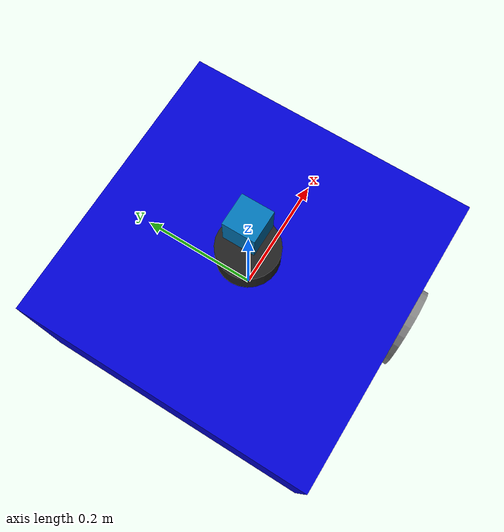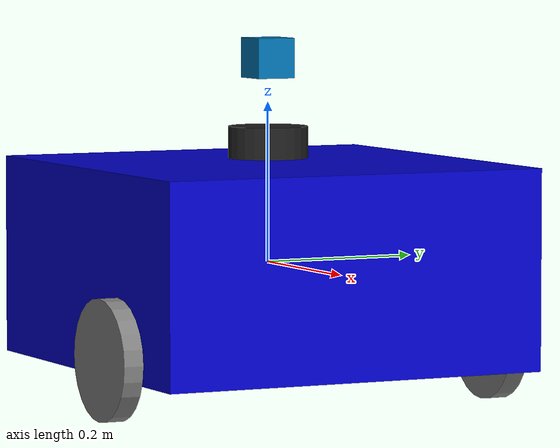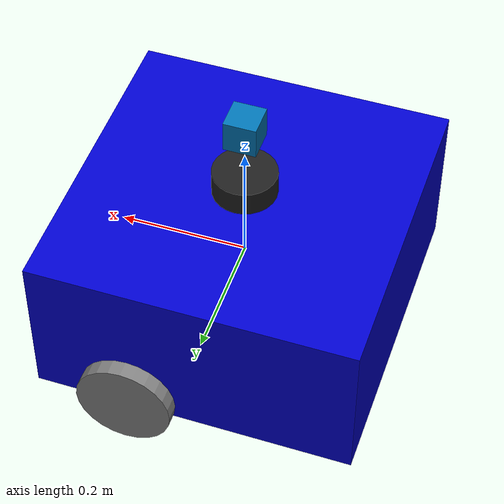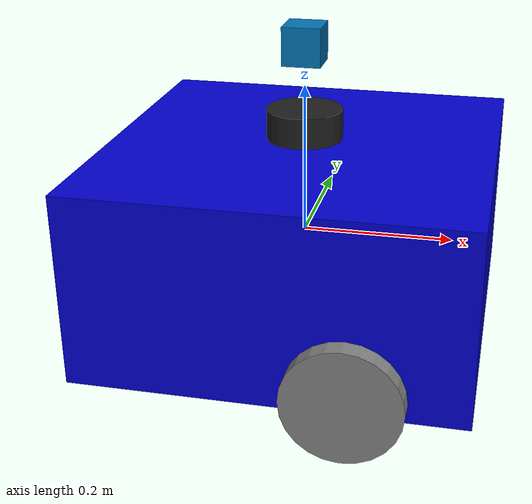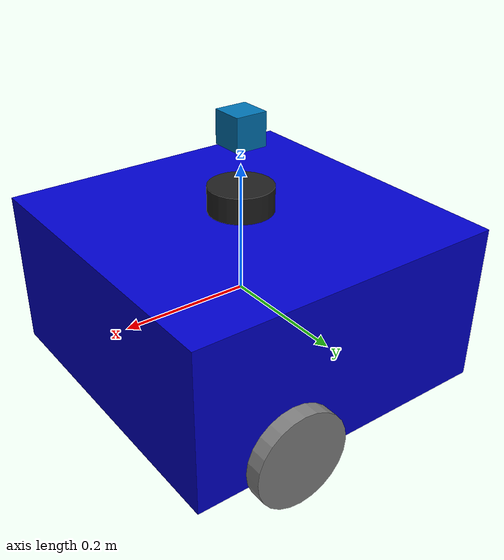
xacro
<?xml version="1.0"?>
<robot xmlns:xacro="http://www.ros.org/wiki/xacro" name="simple_robot">

    <xacro:include filename="$(find teleop_robot)/urdf/robot_properties.xacro"/>
    <xacro:include filename="$(find teleop_robot)/urdf/my_robot_links.xacro"/>
    <xacro:include filename="$(find teleop_robot)/urdf/my_robot_joints.xacro"/>
    <xacro:include filename="$(find teleop_robot)/urdf/ros2_control.xacro"/>
    <xacro:include filename="$(find teleop_robot)/urdf/lidar.xacro"/>
    <xacro:include filename="$(find teleop_robot)/urdf/imu.xacro"/>

    <xacro:lidar parent_link="base_link" x_loc="0.0" y_loc="0.0" z_loc="0.15"/>

</robot>

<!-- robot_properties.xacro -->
<robot xmlns:xacro="http://www.ros.org/wiki/xacro" name="simple_robot">

    <xacro:property name="wheel_radius" value="0.075" />
    <xacro:property name="wheel_length" value="0.025" />
    <xacro:property name="chassis_length" value="0.5" />
    <xacro:property name="chassis_width" value="0.5" />
    <xacro:property name="chassis_height" value="0.25" />
    <xacro:property name="chassis_mass" value="2.0" />
    <xacro:property name="wheel_mass" value="0.5" />

    <material name="blue">
        <color rgba="0 0 0.8 1"/>
    </material>

    <material name="grey">
        <color rgba="0.5 0.5 0.5 1"/>
    </material>

    <xacro:macro name="box_inertia" params="m l w h">
        <inertial>
            <origin xyz="0 0 0" rpy="0 0 0"/>
            <mass value="${m}"/>
            <inertia ixx="${(m/12) * (h*h + l*l)}" ixy="0.0" ixz="0.0"
                     iyy="${(m/12) * (w*w + l*l)}" iyz="0.0"
                     izz="${(m/12) * (w*w + h*h)}"/>
        </inertial>
    </xacro:macro>

    <xacro:macro name="cylinder_inertia" params="m r h">
        <inertial>
            <origin xyz="0 0 0" rpy="0 0 0"/>
            <mass value="${m}"/>
            <inertia ixx="${(m/12) * (3*r*r + h*h)}" ixy="0" ixz="0"
                     iyy="${(m/12) * (3*r*r + h*h)}" iyz="0"
                     izz="${(m/2) * (r*r)}"/>
        </inertial>
    </xacro:macro>

    <xacro:macro name="sphere_inertia" params="m r">
        <inertial>
            <mass value="${m}"/>
            <inertia ixx="${(2/5) * m * (r*r)}" ixy="0.0" ixz="0.0"
                     iyy="${(2/5) * m * (r*r)}" iyz="0.0"
                     izz="${(2/5) * m * (r*r)}"/>
        </inertial>
    </xacro:macro>

</robot>

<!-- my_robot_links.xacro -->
<robot xmlns:xacro="http://www.ros.org/wiki/xacro">

  <link name="base_link">
    <visual>
      <geometry>
        <box size="${chassis_length} ${chassis_width} ${chassis_height}"/>
      </geometry>
      <material name="blue"/>
    </visual>
    <collision>
      <geometry>
        <box size="${chassis_length} ${chassis_width} ${chassis_height}"/>
      </geometry>
    </collision>
    <xacro:box_inertia m="${chassis_mass}" l="${chassis_length}" w="${chassis_width}" h="${chassis_height}"/>
  </link>

  <link name="right_wheel_link">
    <visual>
      <geometry>
        <cylinder radius="${wheel_radius}" length="${wheel_length}"/>
      </geometry>
      <material name="grey"/>
    </visual>
    <collision>
      <geometry>
        <cylinder radius="${wheel_radius}" length="${wheel_length}"/>
      </geometry>
    </collision>
     <xacro:cylinder_inertia m="${wheel_mass}" r="${wheel_radius}" h="${wheel_length}"/>
  </link>

  <link name="left_wheel_link">
    <visual>
      <geometry>
        <cylinder radius="${wheel_radius}" length="${wheel_length}"/>
      </geometry>
      <material name="grey"/>
    </visual>
    <collision>
      <geometry>
        <cylinder radius="${wheel_radius}" length="${wheel_length}"/>
      </geometry>
    </collision>
    <xacro:cylinder_inertia m="${wheel_mass}" r="${wheel_radius}" h="${wheel_length}"/>
  </link>

  <link name="castor_wheel_link">
    <visual>
      <geometry>
        <sphere radius="0.025"/>
      </geometry>
      <material name="grey"/>
    </visual>
    <collision>
      <geometry>
        <sphere radius="0.025"/>
      </geometry>
    </collision>
    <xacro:sphere_inertia m="${wheel_mass}" r="0.025"/>
  </link>

  <gazebo reference="base_link">
        <material>Gazebo/Blue</material>
    </gazebo>

    <gazebo reference="right_wheel_link">
        <material>Gazebo/Grey</material>
        <mu1>1.0</mu1>
        <mu2>1.0</mu2>
        <kp>1000000.0</kp>
        <kd>100.0</kd>
    </gazebo>

    <gazebo reference="left_wheel_link">
        <material>Gazebo/Grey</material>
        <mu1>1.0</mu1>
        <mu2>1.0</mu2>
        <kp>1000000.0</kp>
        <kd>100.0</kd>
    </gazebo>

    <gazebo reference="castor_wheel_link">
        <material>Gazebo/Grey</material>
        <mu1>0.001</mu1>
        <mu2>0.001</mu2>
    </gazebo>

</robot>

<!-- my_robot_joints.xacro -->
<robot xmlns:xacro="http://www.ros.org/wiki/xacro">

    <joint name="right_wheel_joint" type="continuous">
        <parent link="base_link"/>
        <child link="right_wheel_link"/>
        <origin xyz="${0.25 - wheel_radius*2} ${-0.25- wheel_length/2} -0.10" rpy="${pi/2} 0 0"/>
        <axis xyz="0 0 -1"/>
        <limit effort="100" velocity="20"/>
        <dynamics damping="0.1" friction="0.1"/>
    </joint>

    <joint name="left_wheel_joint" type="continuous">
        <parent link="base_link"/>
        <child link="left_wheel_link"/>
        <origin xyz="${0.25 - wheel_radius*2} ${0.25+ wheel_length/2} -0.10" rpy="${pi/2} 0 0"/>
        <axis xyz="0 0 -1"/>
        <limit effort="100" velocity="20"/>
        <dynamics damping="0.1" friction="0.1"/>
    </joint>

    <joint name="castor_joint" type="fixed">
        <parent link="base_link"/>
        <child link="castor_wheel_link"/>
        <origin xyz="-0.2 0 -0.15" rpy="0 0 0"/>
    </joint>

</robot>

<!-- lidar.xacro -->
<robot xmlns:xacro="http://www.ros.org/wiki/xacro">
    <xacro:macro name="lidar" params="parent_link x_loc y_loc z_loc">
        <link name="lidar_link">
            <visual>
                <origin xyz="0 0 0" rpy="0 0 0"/>
                <geometry>
                    <cylinder radius="0.05" length="0.04"/>
                </geometry>
                <material name="black"/>
            </visual>
            <collision>
                <origin xyz="0 0 0" rpy="0 0 0"/>
                <geometry>
                    <cylinder radius="0.05" length="0.04"/>
                </geometry>
            </collision>
            <inertial>
                <mass value="0.1"/>
                <inertia ixx="0.0001" ixy="0" ixz="0" iyy="0.0001" iyz="0" izz="0.0001"/>
            </inertial>
        </link>

        <joint name="lidar_joint" type="fixed">
            <parent link="${parent_link}"/>
            <child link="lidar_link"/>
            <origin xyz="${x_loc} ${y_loc} ${z_loc}" rpy="0 0 0"/>
        </joint>

        <gazebo reference="lidar_link">
            <material>Gazebo/Black</material>
            <sensor name="laser" type="ray">
                <always_on>true</always_on>
                <update_rate>30</update_rate>
                <ray>
                    <scan>
                        <horizontal>
                            <min_angle>-${M_PI}</min_angle>
                            <max_angle>${M_PI}</max_angle>
                            <resolution>1.0</resolution>
                            <samples>360</samples>
                        </horizontal>
                    </scan>
                    <range>
                        <min>0.15</min>
                        <max>10.0</max>
                        <resolution>0.01</resolution>
                    </range>
                    <noise>
                        <type>gaussian</type>
                        <mean>0.0</mean>
                        <stddev>0.01</stddev>
                    </noise>
                </ray>
                <plugin name="gazebo_ros_ray_sensor" filename="libgazebo_ros_ray_sensor.so">
                    <output_type>sensor_msgs/LaserScan</output_type>
                    <ros>
                        <topic_name>scan</topic_name>
                    </ros>
                    <frame_name>lidar_link</frame_name>
                </plugin>
            </sensor>
        </gazebo>
    </xacro:macro>
</robot>

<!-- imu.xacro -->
<robot xmlns:xacro="http://www.ros.org/wiki/xacro">

  <link name="imu_link">
    <visual>
      <geometry><box size="0.05 0.05 0.05"/></geometry>
    </visual>
    <inertial>
      <mass value="0.01"/>
      <inertia ixx="0.0001" ixy="0" ixz="0" iyy="0.0001" iyz="0" izz="0.0001"/>
    </inertial>
  </link>

  <joint name="imu_joint" type="fixed">
    <parent link="base_link"/>
    <child link="imu_link"/>
    <origin xyz="0 0 0.255" rpy="0 0 0"/>
  </joint>

  <gazebo reference="imu_link">
    <sensor name="imu_sensor" type="imu">
      <plugin filename="libgazebo_ros_imu_sensor.so" name="imu_plugin">
        <ros>
          <namespace>/</namespace>
          <remapping>~/out:=imu/data</remapping>
        </ros>
        <initial_orientation_as_reference>false</initial_orientation_as_reference>
       </plugin>
       <always_on>true</always_on>
       <update_rate>100</update_rate>
       <visualize>true</visualize>
    </sensor>
  </gazebo>
</robot>
